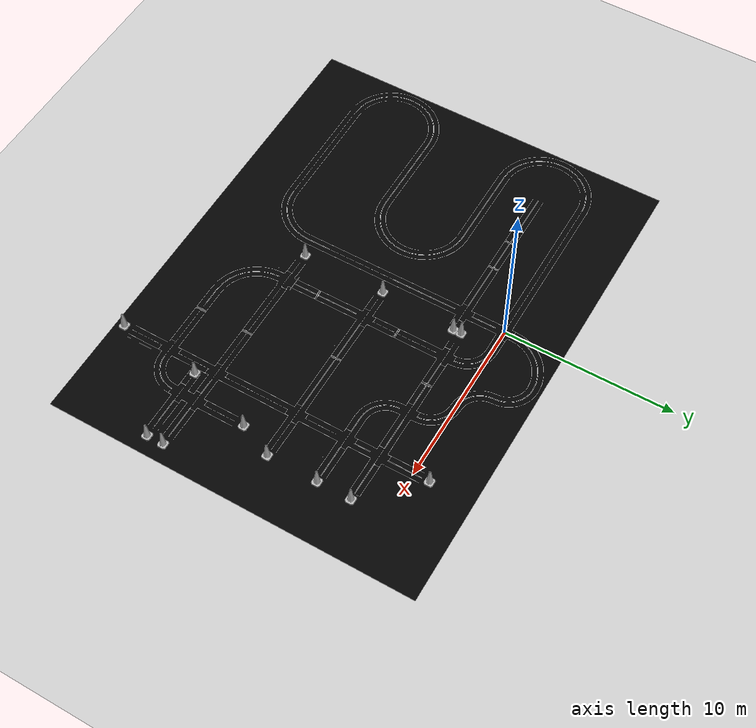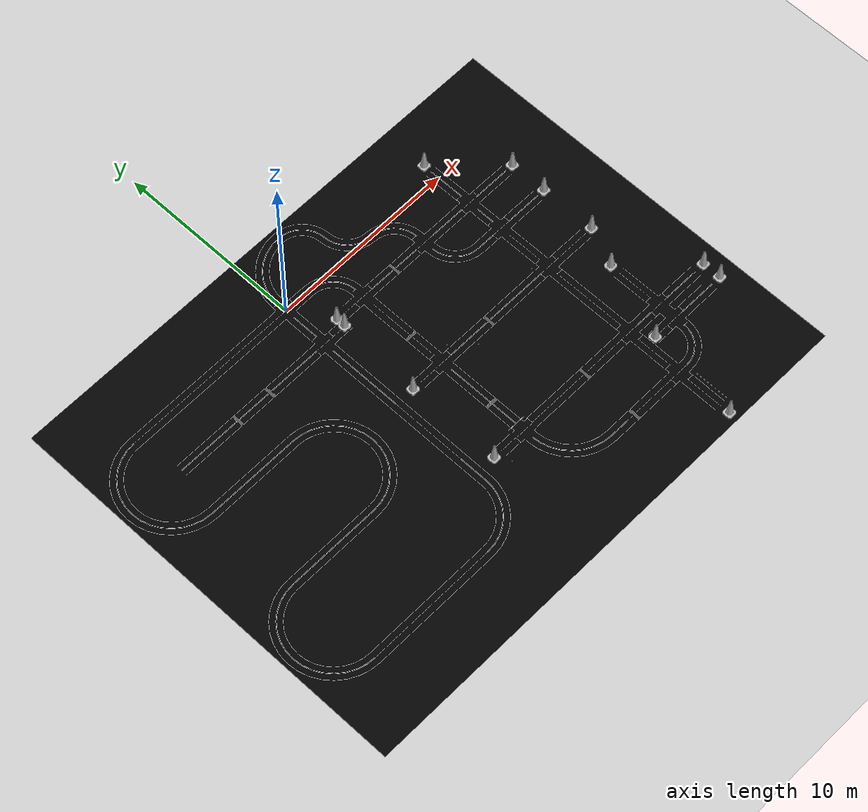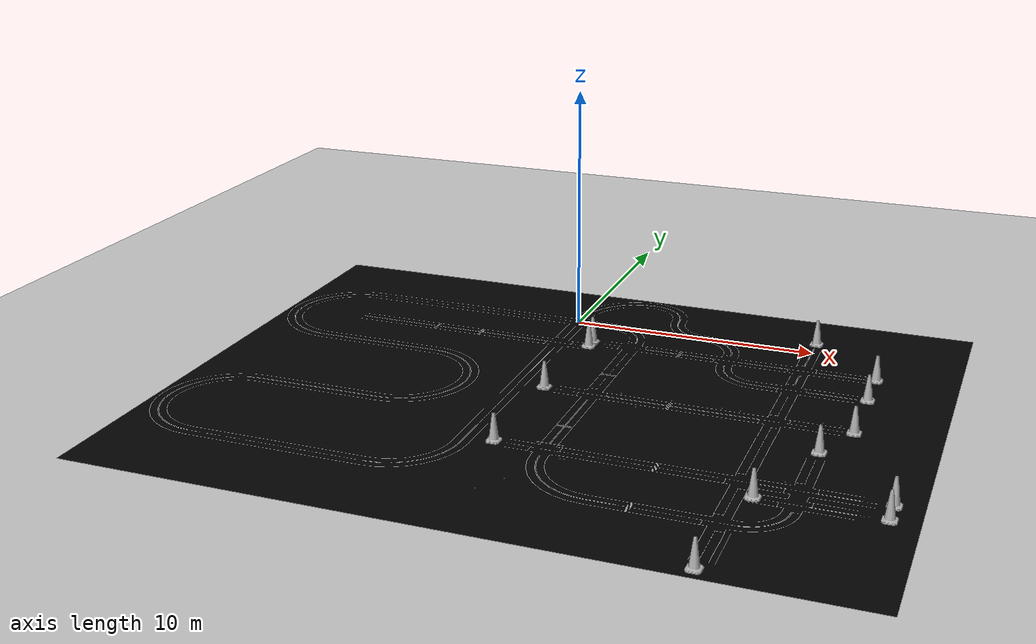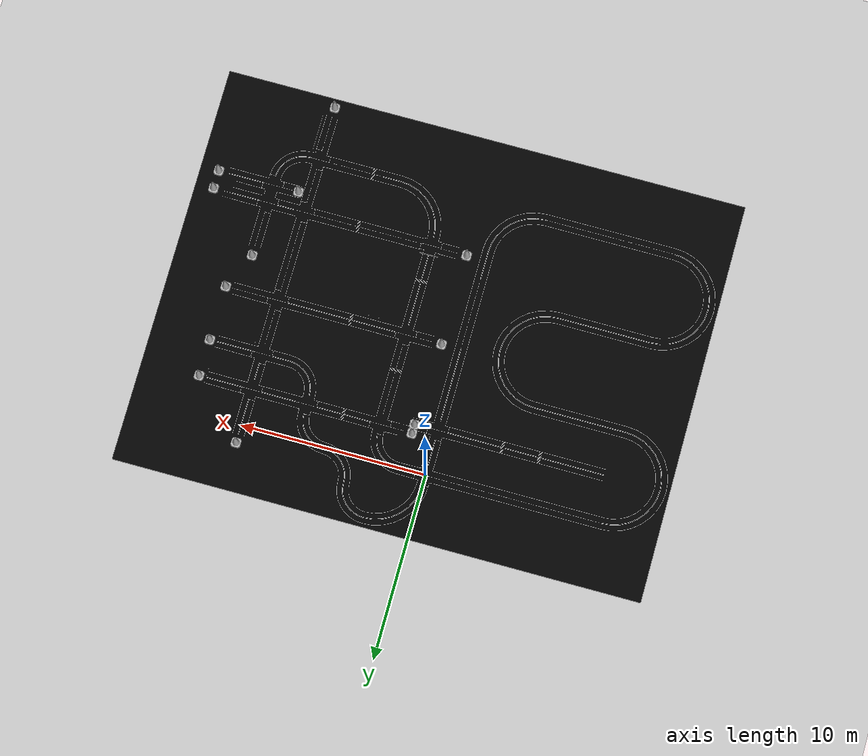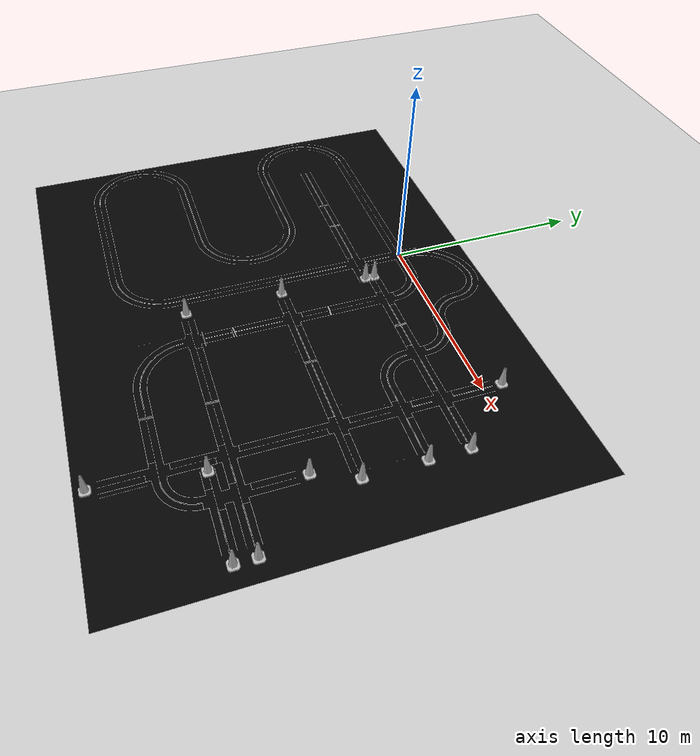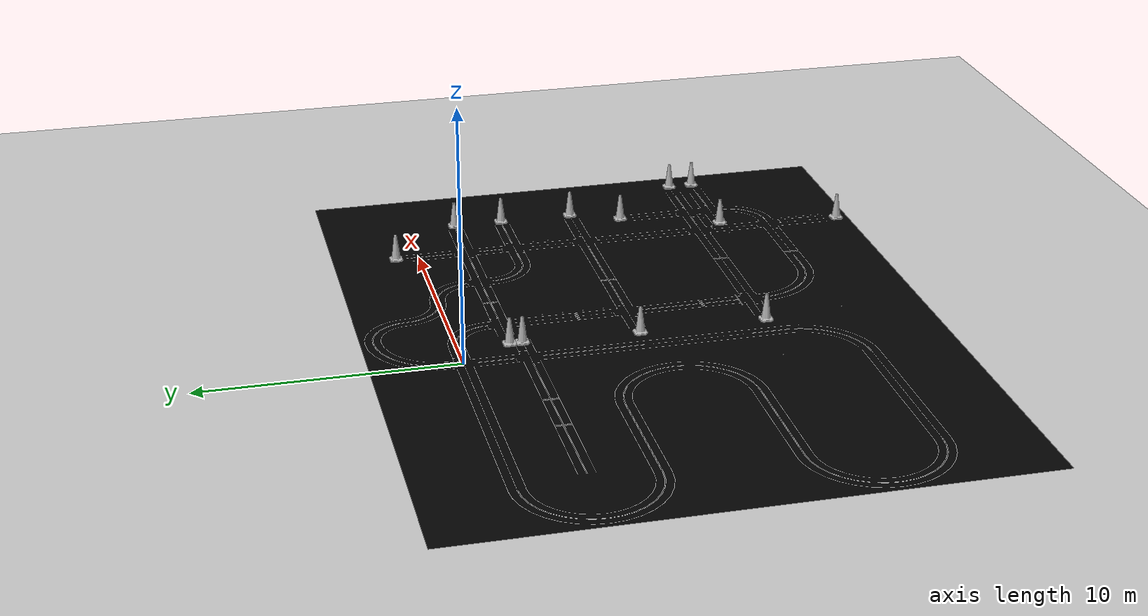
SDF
<?xml version="1.0" ?>
<sdf version="1.6">
  <world name="default">
    <scene>
      <sky>
        <clouds>
          <speed>12</speed>
        </clouds>
      </sky>
      <ambient>1.0 1.0 1.0 1.0</ambient>
      <shadows>false</shadows>
    </scene>

    <!-- A ground plane -->
    <include>
      <uri>model://ground_plane</uri>
      <pose>0 0 0 0 0 0</pose>
    </include>

    <include>
      <uri>model://sun</uri>
    </include>

    <include>
      <name>autcup_city_white_mark</name>
      <uri>model://urdf/models/autcup_city_white_mark</uri>
      <pose>0 0 0.01 0 0 0</pose>
    </include>

    <include>
      <static>true</static>
      <name>cone_1</name>
      <uri>model://construction_cone</uri>
      <pose>10.0 0.94 0 0 0 0</pose>
    </include>

    <include>
      <static>true</static>
      <name>cone_2</name>
      <uri>model://construction_cone</uri>
      <pose>15.0 -13.0 0 0 0 0</pose>
    </include>

    <include>
      <static>true</static>
      <name>cone_3</name>
      <uri>model://construction_cone</uri>
      <pose>12.87 -2.0 0 0 0 0</pose>
    </include>

    <include>
      <static>true</static>
      <name>cone_4</name>
      <uri>model://construction_cone</uri>
      <pose>12.87 -4.0 0 0 0 0</pose>
    </include>

    <include>
      <static>true</static>
      <name>cone_5</name>
      <uri>model://construction_cone</uri>
      <pose>12.87 -7.0 0 0 0 0</pose>
    </include>

    <include>
      <static>true</static>
      <name>cone_6</name>
      <uri>model://construction_cone</uri>
      <pose>12.0 -9.0 0 0 0 0</pose>
    </include>

    <include>
      <static>true</static>
      <name>cone_7</name>
      <uri>model://construction_cone</uri>
      <pose>15.0 -12.0 0 0 0 0</pose>
    </include>

    <include>
      <static>true</static>
      <name>cone_8</name>
      <uri>model://construction_cone</uri>
      <pose>10.0 -18.0 0 0 0 0</pose>
    </include>

    <include>
      <static>true</static>
      <name>cone_9</name>
      <uri>model://construction_cone</uri>
      <pose>10.6 -13.0 0 0 0 0</pose>
    </include>

    <include>
      <static>true</static>
      <name>cone_10</name>
      <uri>model://construction_cone</uri>
      <pose>1.28 -2.47 0 0 0 0</pose>
    </include>

    <include>
      <static>true</static>
      <name>cone_11</name>
      <uri>model://construction_cone</uri>
      <pose>1.28 -1.98 0 0 0 0</pose>
    </include>

    <include>
      <static>true</static>
      <name>cone_12</name>
      <uri>model://construction_cone</uri>
      <pose>1.06 -7.0 0 0 0 0</pose>
    </include>

    <include>
      <static>true</static>
      <name>cone_13</name>
      <uri>model://construction_cone</uri>
      <pose>1.06 -12.0 0 0 0 0</pose>
    </include>

  </world>
</sdf>

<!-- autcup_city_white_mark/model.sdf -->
<sdf version="1.6">
  <model name="autcup_city_white_mark">
    <static>true</static>

    <link name="link">
      <collision name="collision">
        <geometry>
          <mesh>
            <uri>model://autocone_description/urdf/models/autcup_city_white_mark/autcup_city_white_mark.dae</uri>
          </mesh>
        </geometry>
        <surface>
            <contact>
              <collide_without_contact>true</collide_without_contact>
            </contact>
          </surface>

      </collision>

      <visual name="visual">
        <cast_shadows>true</cast_shadows>
        <geometry>
          <mesh>
            <uri>model://autocone_description/urdf/models/autcup_city_white_mark/autcup_city_white_mark.dae</uri>
          </mesh>
        </geometry>
      </visual>
    </link>
  </model>
</sdf>

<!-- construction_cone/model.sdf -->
<sdf version="1.5">
  <model name="Construction Cone">
    <link name="link">
      <collision name="collision">
        <geometry>
          <mesh>
            <scale>10 10 10</scale>
            <uri>file://isr-testbed/construction_cone/meshes/construction_cone.dae</uri>
          </mesh>
        </geometry>
      </collision>
      <visual name="visual">
        <geometry>
          <mesh>
            <scale>10 10 10</scale>
            <uri>file://isr-testbed/construction_cone/meshes/construction_cone.dae</uri>
          </mesh>
        </geometry>
      </visual>
    </link>
  </model>
</sdf>
